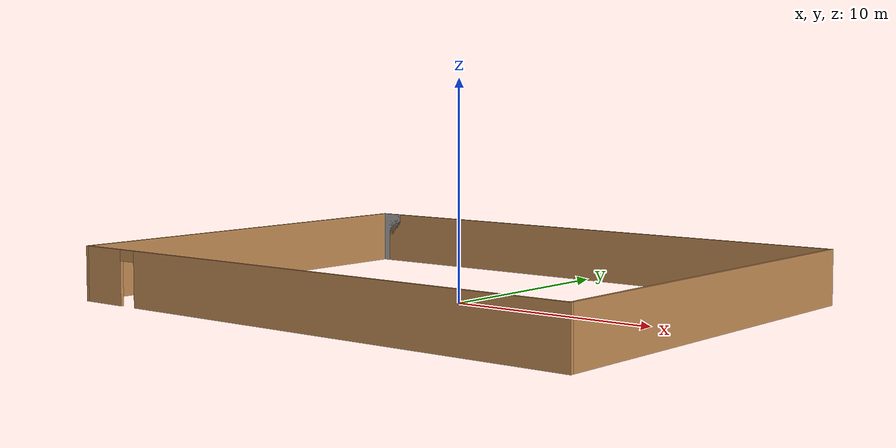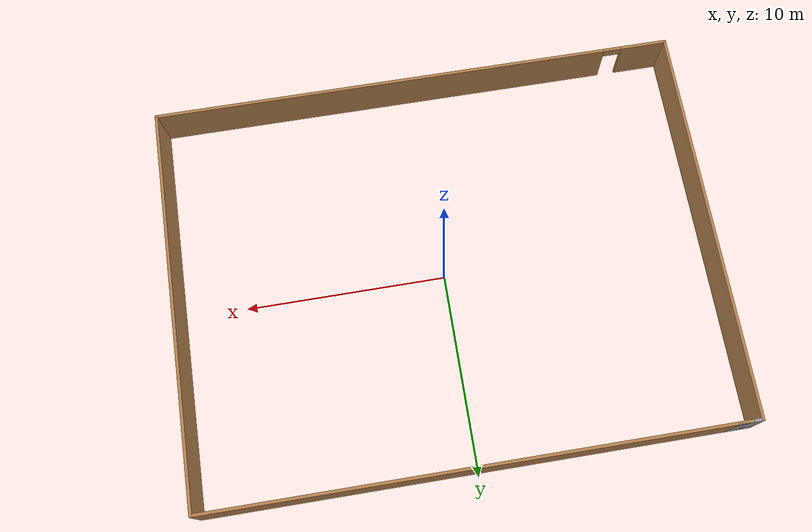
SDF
<?xml version='1.0'?>
<sdf version='1.6'>
  <model name='mapping.wolrd'>
    <pose frame=''>-0.061843 -0.145797 0 0 -0 0</pose>
    <link name='Wall_11'>
      <collision name='Wall_11_Collision'>
        <geometry>
          <box>
            <size>26 0.15 2.5</size>
          </box>
        </geometry>
        <pose frame=''>0 0 1.25 0 -0 0</pose>
      </collision>
      <visual name='Wall_11_Visual'>
        <pose frame=''>0 0 1.25 0 -0 0</pose>
        <geometry>
          <box>
            <size>26 0.15 2.5</size>
          </box>
        </geometry>
        <material>
          <script>
            <uri>file://media/materials/scripts/gazebo.material</uri>
            <name>Gazebo/Wood</name>
          </script>
          <ambient>1 1 1 1</ambient>
        </material>
      </visual>
      <pose frame=''>0.25 9.925 0 0 -0 0</pose>
    </link>
    <link name='Wall_12'>
      <collision name='Wall_12_Collision'>
        <geometry>
          <box>
            <size>20 0.15 2.5</size>
          </box>
        </geometry>
        <pose frame=''>0 0 1.25 0 -0 0</pose>
      </collision>
      <visual name='Wall_12_Visual'>
        <pose frame=''>0 0 1.25 0 -0 0</pose>
        <geometry>
          <box>
            <size>20 0.15 2.5</size>
          </box>
        </geometry>
        <material>
          <script>
            <uri>file://media/materials/scripts/gazebo.material</uri>
            <name>Gazebo/Wood</name>
          </script>
          <ambient>1 1 1 1</ambient>
        </material>
      </visual>
      <pose frame=''>13.175 0 0 0 0 -1.5708</pose>
    </link>
    <link name='Wall_13'>
      <pose frame=''>0 -9.925 0 0 -0 3.14159</pose>
      <visual name='Wall_13_Visual_0'>
        <pose frame=''>-1.64145 0 1.25 0 -0 0</pose>
        <geometry>
          <box>
            <size>23.2171 0.15 2.5</size>
          </box>
        </geometry>
        <material>
          <script>
            <uri>file://media/materials/scripts/gazebo.material</uri>
            <name>Gazebo/Wood</name>
          </script>
          <ambient>1 1 1 1</ambient>
        </material>
      </visual>
      <collision name='Wall_13_Collision_0'>
        <geometry>
          <box>
            <size>23.2171 0.15 2.5</size>
          </box>
        </geometry>
        <pose frame=''>-1.64145 0 1.25 0 -0 0</pose>
      </collision>
      <visual name='Wall_13_Visual_1'>
        <pose frame=''>12.0585 0 1.25 0 -0 0</pose>
        <geometry>
          <box>
            <size>2.38291 0.15 2.5</size>
          </box>
        </geometry>
        <material>
          <script>
            <uri>file://media/materials/scripts/gazebo.material</uri>
            <name>Gazebo/Wood</name>
          </script>
          <ambient>1 1 1 1</ambient>
        </material>
      </visual>
      <collision name='Wall_13_Collision_1'>
        <geometry>
          <box>
            <size>2.38291 0.15 2.5</size>
          </box>
        </geometry>
        <pose frame=''>12.0585 0 1.25 0 -0 0</pose>
      </collision>
      <visual name='Wall_13_Visual_2'>
        <pose frame=''>10.4171 0 2.25 0 -0 0</pose>
        <geometry>
          <box>
            <size>0.9 0.15 0.5</size>
          </box>
        </geometry>
        <material>
          <script>
            <uri>file://media/materials/scripts/gazebo.material</uri>
            <name>Gazebo/Wood</name>
          </script>
          <ambient>1 1 1 1</ambient>
        </material>
      </visual>
      <collision name='Wall_13_Collision_2'>
        <geometry>
          <box>
            <size>0.9 0.15 0.5</size>
          </box>
        </geometry>
        <pose frame=''>10.4171 0 2.25 0 -0 0</pose>
      </collision>
    </link>
    <link name='Wall_14'>
      <collision name='Wall_14_Collision'>
        <geometry>
          <box>
            <size>20 0.15 2.5</size>
          </box>
        </geometry>
        <pose frame=''>0 0 1.25 0 -0 0</pose>
      </collision>
      <visual name='Wall_14_Visual'>
        <pose frame=''>0 0 1.25 0 -0 0</pose>
        <geometry>
          <box>
            <size>20 0.15 2.5</size>
          </box>
        </geometry>
        <material>
          <script>
            <uri>file://media/materials/scripts/gazebo.material</uri>
            <name>Gazebo/Wood</name>
          </script>
          <ambient>1 1 1 1</ambient>
        </material>
      </visual>
      <pose frame=''>-13.175 0 0 0 -0 1.5708</pose>
    </link>
    <link name='Wall_15'>
      <collision name='Wall_15_Collision'>
        <geometry>
          <box>
            <size>1.25 0.15 2.5</size>
          </box>
        </geometry>
        <pose frame=''>0 0 1.25 0 -0 0</pose>
      </collision>
      <visual name='Wall_15_Visual'>
        <pose frame=''>0 0 1.25 0 -0 0</pose>
        <geometry>
          <box>
            <size>1.25 0.15 2.5</size>
          </box>
        </geometry>
        <material>
          <script>
            <uri>file://media/materials/scripts/gazebo.material</uri>
            <name>Gazebo/Grey</name>
          </script>
          <ambient>1 1 1 1</ambient>
        </material>
      </visual>
      <pose frame=''>-12.625 9.925 0 0 -0 0</pose>
    </link>
    <static>1</static>
  </model>
</sdf>
